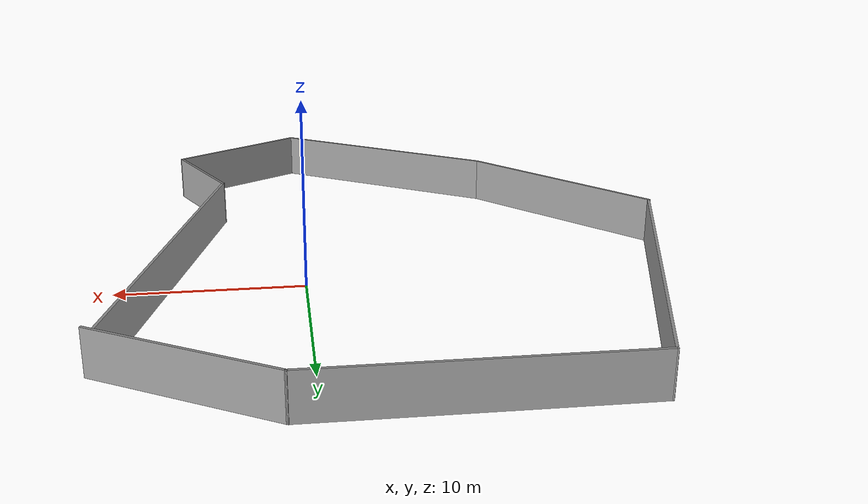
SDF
<?xml version='1.0'?>
<sdf version='1.7'>
  <model name='room_model'>
    <pose>-4.84259 -2.68825 0 0 -0 0</pose>
    <link name='Wall_11'>
      <collision name='Wall_11_Collision'>
        <geometry>
          <box>
            <size>20 0.15 2.5</size>
          </box>
        </geometry>
        <pose>0 0 1.25 0 -0 0</pose>
      </collision>
      <visual name='Wall_11_Visual'>
        <pose>0 0 1.25 0 -0 0</pose>
        <geometry>
          <box>
            <size>20 0.15 2.5</size>
          </box>
        </geometry>
        <material>
          <script>
            <uri>file://media/materials/scripts/gazebo.material</uri>
            <name>Gazebo/Grey</name>
          </script>
          <ambient>1 1 1 1</ambient>
        </material>
        <meta>
          <layer>0</layer>
        </meta>
      </visual>
      <pose>11.8806 2.14285 0 0 -0 -1.8326</pose>
    </link>
    <link name='Wall_13'>
      <collision name='Wall_13_Collision'>
        <geometry>
          <box>
            <size>10.25 0.15 2.5</size>
          </box>
        </geometry>
        <pose>0 0 1.25 0 -0 0</pose>
      </collision>
      <visual name='Wall_13_Visual'>
        <pose>0 0 1.25 0 -0 0</pose>
        <geometry>
          <box>
            <size>10.25 0.15 2.5</size>
          </box>
        </geometry>
        <material>
          <script>
            <uri>file://media/materials/scripts/gazebo.material</uri>
            <name>Gazebo/Grey</name>
          </script>
          <ambient>1 1 1 1</ambient>
        </material>
        <meta>
          <layer>0</layer>
        </meta>
      </visual>
      <pose>10.6162 14.106 0 0 -0 2.61799</pose>
    </link>
    <link name='Wall_14'>
      <collision name='Wall_14_Collision'>
        <geometry>
          <box>
            <size>16.5 0.15 2.5</size>
          </box>
        </geometry>
        <pose>0 0 1.25 0 -0 0</pose>
      </collision>
      <visual name='Wall_14_Visual'>
        <pose>0 0 1.25 0 -0 0</pose>
        <geometry>
          <box>
            <size>16.5 0.15 2.5</size>
          </box>
        </geometry>
        <material>
          <script>
            <uri>file://media/materials/scripts/gazebo.material</uri>
            <name>Gazebo/Grey</name>
          </script>
          <ambient>1 1 1 1</ambient>
        </material>
        <meta>
          <layer>0</layer>
        </meta>
      </visual>
      <pose>-1.93225 16.631 0 0 -0 3.14159</pose>
    </link>
    <link name='Wall_15'>
      <collision name='Wall_15_Collision'>
        <geometry>
          <box>
            <size>19 0.15 2.5</size>
          </box>
        </geometry>
        <pose>0 0 1.25 0 -0 0</pose>
      </collision>
      <visual name='Wall_15_Visual'>
        <pose>0 0 1.25 0 -0 0</pose>
        <geometry>
          <box>
            <size>19 0.15 2.5</size>
          </box>
        </geometry>
        <material>
          <script>
            <uri>file://media/materials/scripts/gazebo.material</uri>
            <name>Gazebo/Grey</name>
          </script>
          <ambient>1 1 1 1</ambient>
        </material>
        <meta>
          <layer>0</layer>
        </meta>
      </visual>
      <pose>-12.5466 7.52711 0 0 -0 -1.8326</pose>
    </link>
    <link name='Wall_16'>
      <collision name='Wall_16_Collision'>
        <geometry>
          <box>
            <size>12 0.15 2.5</size>
          </box>
        </geometry>
        <pose>0 0 1.25 0 -0 0</pose>
      </collision>
      <visual name='Wall_16_Visual'>
        <pose>0 0 1.25 0 -0 0</pose>
        <geometry>
          <box>
            <size>12 0.15 2.5</size>
          </box>
        </geometry>
        <material>
          <script>
            <uri>file://media/materials/scripts/gazebo.material</uri>
            <name>Gazebo/Grey</name>
          </script>
          <ambient>1 1 1 1</ambient>
        </material>
        <meta>
          <layer>0</layer>
        </meta>
      </visual>
      <pose>-10.7964 -5.76635 0 0 -0 -0.785398</pose>
    </link>
    <link name='Wall_17'>
      <collision name='Wall_17_Collision'>
        <geometry>
          <box>
            <size>13.5 0.15 2.5</size>
          </box>
        </geometry>
        <pose>0 0 1.25 0 -0 0</pose>
      </collision>
      <visual name='Wall_17_Visual'>
        <pose>0 0 1.25 0 -0 0</pose>
        <geometry>
          <box>
            <size>13.5 0.15 2.5</size>
          </box>
        </geometry>
        <material>
          <script>
            <uri>file://media/materials/scripts/gazebo.material</uri>
            <name>Gazebo/Grey</name>
          </script>
          <ambient>1 1 1 1</ambient>
        </material>
        <meta>
          <layer>0</layer>
        </meta>
      </visual>
      <pose>-0.826058 -13.2935 0 0 -0 -0.523599</pose>
    </link>
    <link name='Wall_18'>
      <collision name='Wall_18_Collision'>
        <geometry>
          <box>
            <size>8.25 0.15 2.5</size>
          </box>
        </geometry>
        <pose>0 0 1.25 0 -0 0</pose>
      </collision>
      <visual name='Wall_18_Visual'>
        <pose>0 0 1.25 0 -0 0</pose>
        <geometry>
          <box>
            <size>8.25 0.15 2.5</size>
          </box>
        </geometry>
        <material>
          <script>
            <uri>file://media/materials/scripts/gazebo.material</uri>
            <name>Gazebo/Grey</name>
          </script>
          <ambient>1 1 1 1</ambient>
        </material>
        <meta>
          <layer>0</layer>
        </meta>
      </visual>
      <pose>8.46207 -14.606 0 0 -0 0.523599</pose>
    </link>
    <link name='Wall_19'>
      <collision name='Wall_19_Collision'>
        <geometry>
          <box>
            <size>5.93376 0.15 2.5</size>
          </box>
        </geometry>
        <pose>0 0 1.25 0 -0 0</pose>
      </collision>
      <visual name='Wall_19_Visual'>
        <pose>0 0 1.25 0 -0 0</pose>
        <geometry>
          <box>
            <size>5.93376 0.15 2.5</size>
          </box>
        </geometry>
        <material>
          <script>
            <uri>file://media/materials/scripts/gazebo.material</uri>
            <name>Gazebo/Grey</name>
          </script>
          <ambient>1 1 1 1</ambient>
        </material>
        <meta>
          <layer>0</layer>
        </meta>
      </visual>
      <pose>10.6406 -10.0125 0 0 -0 2.04823</pose>
    </link>
    <static>1</static>
  </model>
</sdf>
